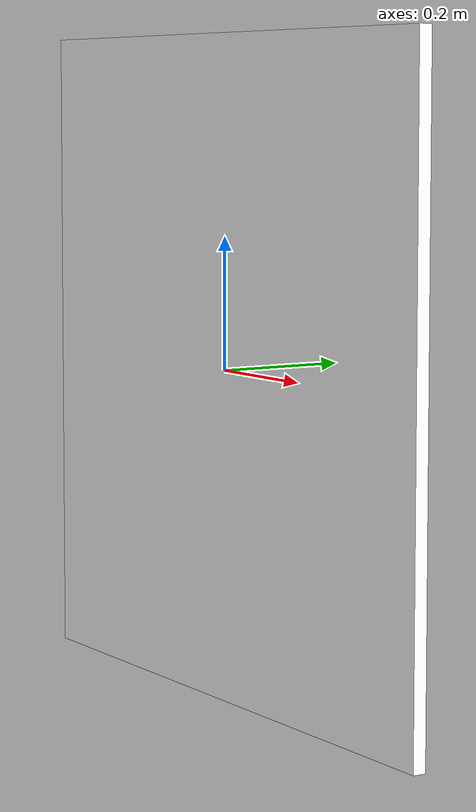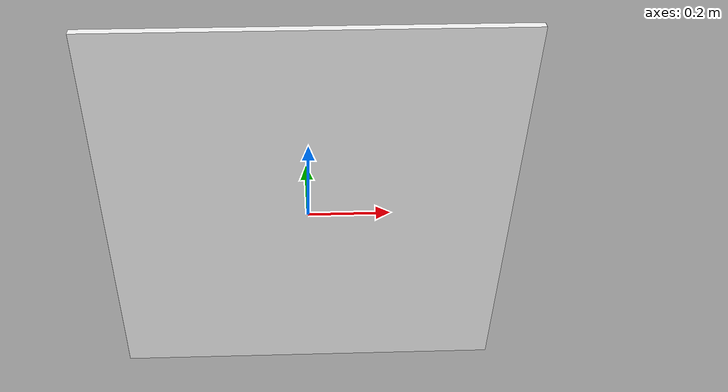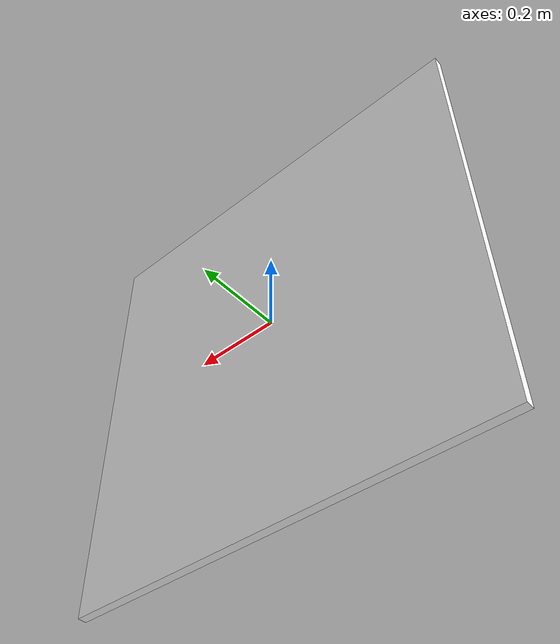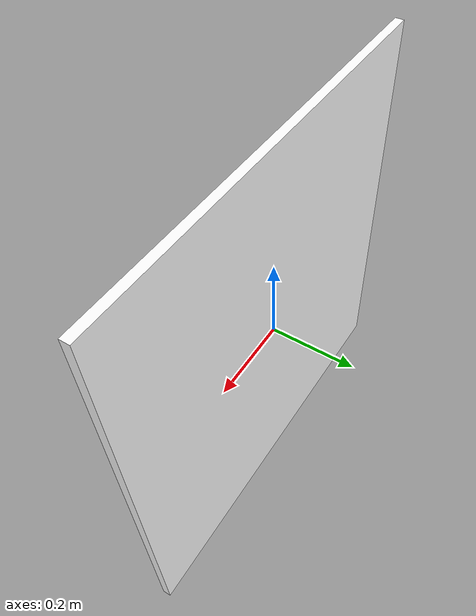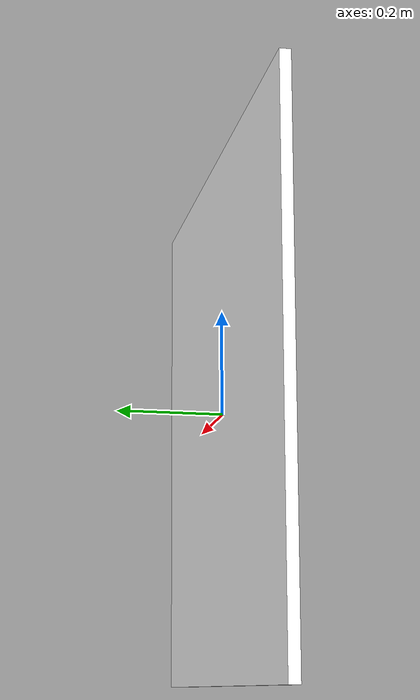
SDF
<?xml version="1.0" encoding="UTF-8"?>
<sdf version="1.9">
  <model name="aruco_5x5_0">
    <static>false</static>
    <link name="link">
      <pose>0 0 0 1.570796 0 0</pose>
      <inertial>
        <mass>0.05</mass>
        <inertia>
          <ixx>6.7e-4</ixx>
          <ixy>0</ixy>
          <ixz>0</ixz>
          <iyy>6.7e-4</iyy>
          <iyz>0</iyz>
          <izz>1.3e-3</izz>
        </inertia>
      </inertial>
      <collision name="collision">
        <geometry>
          <box>
            <size>1.0 1.0 0.02</size>
          </box>
        </geometry>
      </collision>
      <visual name="visual">
        <geometry>
          <box>
            <size>1.0 1.0 0.02</size>
          </box>
        </geometry>
        <material>
          <ambient>1 1 1 1</ambient>
          <diffuse>1 1 1 1</diffuse>
          <specular>0.1 0.1 0.1 1</specular>
          <pbr>
            <metal>
              <albedo_map>materials/textures/aruco_5x5_0.png</albedo_map>
            </metal>
          </pbr>
        </material>
      </visual>
    </link>
  </model>
</sdf>
